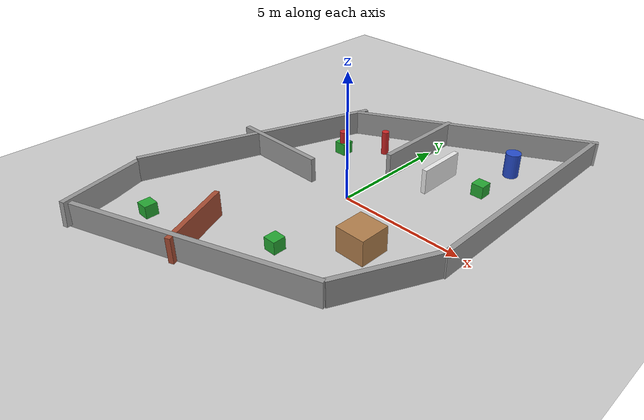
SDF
<sdf version="1.7">
 <world name="four_rooms_world_complex">
  <light name="sun" type="directional">
   <pose>0 0 10 0 -0 0</pose>
   <diffuse>0.8 0.8 0.8 1</diffuse>
   <specular>0.2 0.2 0.2 1</specular>
   <attenuation>
    <range>1000</range>
    <constant>0.9</constant>
    <linear>0.01</linear>
    <quadratic>0.001</quadratic>
   </attenuation>
   <direction>-0.5 0.1 -0.9</direction>
   <spot><inner_angle>0</inner_angle><outer_angle>0</outer_angle><falloff>0</falloff></spot>
  </light>
  <model name="ground_plane">
   <static>1</static>
   <link name="link">
    <collision name="collision">
     <geometry><plane><normal>0 0 1</normal><size>100 100</size></plane></geometry>
     <surface><friction><ode><mu>100</mu><mu2>50</mu2></ode></friction></surface>
    </collision>
    <visual name="visual">
     <cast_shadows>0</cast_shadows>
     <geometry><plane><normal>0 0 1</normal><size>100 100</size></plane></geometry>
     <material>
      <script><uri>file://media/materials/scripts/gazebo.material</uri><name>Gazebo/Grey</name></script>
     </material>
    </visual>
   </link>
  </model>
  <model name="wall_top">
   <static>1</static>
   <pose>0.971432 6.56858 0.5 0 -0 0.480651</pose>
   <link name="link">
    <collision name="c"><geometry><box><size>10 0.2 1</size></box></geometry></collision>
    <visual name="v">
     <geometry><box><size>10 0.2 1</size></box></geometry>
     <material>
      <script><uri>file://media/materials/scripts/gazebo.material</uri><name>Gazebo/Grey</name></script>
     </material>
    </visual>
   </link>
  </model>
  <model name="wall_bottom">
   <static>1</static>
   <pose>-1.11674 -6.33556 0.5 0 -0 0.341465</pose>
   <link name="link">
    <collision name="c"><geometry><box><size>10 0.2 1</size></box></geometry></collision>
    <visual name="v">
     <geometry><box><size>10 0.2 1</size></box></geometry>
     <material>
      <script><uri>file://media/materials/scripts/gazebo.material</uri><name>Gazebo/Grey</name></script>
     </material>
    </visual>
   </link>
  </model>
  <model name="wall_left">
   <static>1</static>
   <pose>-5 0 0.5 0 0 -0.344029</pose>
   <link name="link">
    <collision name="c"><geometry><box><size>0.2 10 1</size></box></geometry></collision>
    <visual name="v">
     <geometry><box><size>0.2 10 1</size></box></geometry>
     <material>
      <script><uri>file://media/materials/scripts/gazebo.material</uri><name>Gazebo/Grey</name></script>
     </material>
    </visual>
   </link>
  </model>
  <model name="wall_right">
   <static>1</static>
   <pose>5.26093 3.82195 0.5 0 -0 0</pose>
   <link name="link">
    <collision name="c"><geometry><box><size>0.2 10 1</size></box></geometry></collision>
    <visual name="v">
     <geometry><box><size>0.2 10 1</size></box></geometry>
     <material>
      <script><uri>file://media/materials/scripts/gazebo.material</uri><name>Gazebo/Grey</name></script>
     </material>
    </visual>
   </link>
  </model>
  <model name="wall_inner_top">
   <static>1</static>
   <pose>0.036173 4.26672 0.5 0 -0 0</pose>
   <link name="link">
    <collision name="c"><geometry><box><size>0.2 4 1</size></box></geometry></collision>
    <visual name="v">
     <geometry><box><size>0.2 4 1</size></box></geometry>
     <material>
      <script><uri>file://media/materials/scripts/gazebo.material</uri><name>Gazebo/Grey</name></script>
     </material>
    </visual>
   </link>
  </model>
  <model name="wall_inner_bottom">
   <static>1</static>
   <pose>-6.17028 -6.3221 0.5 -3.08017 -0.042436 -2.82163</pose>
   <link name="link">
    <collision name="c"><geometry><box><size>0.2 4 1</size></box></geometry></collision>
    <visual name="v">
     <geometry><box><size>0.2 4 1</size></box></geometry>
     <material>
      <script><uri>file://media/materials/scripts/gazebo.material</uri><name>Gazebo/Grey</name></script>
     </material>
    </visual>
   </link>
  </model>
  <model name="wall_inner_left">
   <static>1</static>
   <pose>-3.78806 -0.023325 0.5 0 -0 0</pose>
   <link name="link">
    <collision name="c"><geometry><box><size>4 0.2 1</size></box></geometry></collision>
    <visual name="v">
     <geometry><box><size>4 0.2 1</size></box></geometry>
     <material>
      <script><uri>file://media/materials/scripts/gazebo.material</uri><name>Gazebo/Grey</name></script>
     </material>
    </visual>
   </link>
  </model>
  <model name="wall_inner_right">
   <static>1</static>
   <pose>4.4147 -2.83294 0.5 0 -0 1.12934</pose>
   <link name="link">
    <collision name="c"><geometry><box><size>4 0.2 1</size></box></geometry></collision>
    <visual name="v">
     <geometry><box><size>4 0.2 1</size></box></geometry>
     <material>
      <script><uri>file://media/materials/scripts/gazebo.material</uri><name>Gazebo/Grey</name></script>
     </material>
    </visual>
   </link>
  </model>
  <model name="r1_wall_v">
   <static>1</static>
   <pose>1.77271 3.28107 0.5 0 -0 0</pose>
   <link name="link">
    <collision name="c"><geometry><box><size>0.2 2 1</size></box></geometry></collision>
    <visual name="v">
     <geometry><box><size>0.2 2 1</size></box></geometry>
     <material>
      <script><uri>file://media/materials/scripts/gazebo.material</uri><name>Gazebo/White</name></script>
     </material>
    </visual>
   </link>
  </model>
  <model name="r2_p3">
   <static>1</static>
   <pose>-1.32661 3.66592 0.496269 0 -0 0</pose>
   <link name="link">
    <collision name="c">
     <geometry><cylinder><radius>0.15</radius><length>1</length></cylinder></geometry>
    </collision>
    <visual name="v">
     <geometry><cylinder><radius>0.15</radius><length>1</length></cylinder></geometry>
     <material>
      <script><uri>file://media/materials/scripts/gazebo.material</uri><name>Gazebo/Red</name></script>
     </material>
    </visual>
   </link>
  </model>
  <model name="r2_p4">
   <static>1</static>
   <pose>-2.58674 2.45919 0.5 0 -0 0</pose>
   <link name="link">
    <collision name="c">
     <geometry><cylinder><radius>0.15</radius><length>1</length></cylinder></geometry>
    </collision>
    <visual name="v">
     <geometry><cylinder><radius>0.15</radius><length>1</length></cylinder></geometry>
     <material>
      <script><uri>file://media/materials/scripts/gazebo.material</uri><name>Gazebo/Red</name></script>
     </material>
    </visual>
   </link>
  </model>
  <model name="r3_long_wall">
   <static>1</static>
   <pose>-1.94162 -5.33772 0.5 0 0 -1.16676</pose>
   <link name="link">
    <collision name="c"><geometry><box><size>3 0.2 1</size></box></geometry></collision>
    <visual name="v">
     <geometry><box><size>3 0.2 1</size></box></geometry>
     <material>
      <script><uri>file://media/materials/scripts/gazebo.material</uri><name>Gazebo/Bricks</name></script>
     </material>
    </visual>
   </link>
  </model>
  <model name="r4_box">
   <static>1</static>
   <pose>2.53569 -1.95039 0.5 0 -0 0</pose>
   <link name="link">
    <collision name="c"><geometry><box><size>1.2 1.2 1</size></box></geometry></collision>
    <visual name="v">
     <geometry><box><size>1.2 1.2 1</size></box></geometry>
     <material>
      <script><uri>file://media/materials/scripts/gazebo.material</uri><name>Gazebo/Wood</name></script>
     </material>
    </visual>
   </link>
  </model>
  <model name="r4_cylinder">
   <static>1</static>
   <pose>3.42763 5.76904 0.5 0 -0 0</pose>
   <link name="link">
    <collision name="c">
     <geometry><cylinder><radius>0.3</radius><length>1</length></cylinder></geometry>
    </collision>
    <visual name="v">
     <geometry><cylinder><radius>0.3</radius><length>1</length></cylinder></geometry>
     <material>
      <script><uri>file://media/materials/scripts/gazebo.material</uri><name>Gazebo/Blue</name></script>
     </material>
    </visual>
   </link>
  </model>
  <model name="green_box_1">
   <static>1</static>
   <pose>3.3601 3.72142 0.25 0 -0 0</pose>
   <link name="link">
    <collision name="c"><geometry><box><size>0.5 0.5 0.5</size></box></geometry></collision>
    <visual name="v">
     <geometry><box><size>0.5 0.5 0.5</size></box></geometry>
     <material>
      <script><uri>file://media/materials/scripts/gazebo.material</uri><name>Gazebo/Green</name></script>
     </material>
    </visual>
   </link>
  </model>
  <model name="green_box_2">
   <static>1</static>
   <pose>-2.62198 2.5251 0.25 0 -0 0</pose>
   <link name="link">
    <collision name="c"><geometry><box><size>0.5 0.5 0.5</size></box></geometry></collision>
    <visual name="v">
     <geometry><box><size>0.5 0.5 0.5</size></box></geometry>
     <material>
      <script><uri>file://media/materials/scripts/gazebo.material</uri><name>Gazebo/Green</name></script>
     </material>
    </visual>
   </link>
  </model>
  <model name="green_box_3">
   <static>1</static>
   <pose>-4.3734 -5.71108 0.25 0 -0 0</pose>
   <link name="link">
    <collision name="c"><geometry><box><size>0.5 0.5 0.5</size></box></geometry></collision>
    <visual name="v">
     <geometry><box><size>0.5 0.5 0.5</size></box></geometry>
     <material>
      <script><uri>file://media/materials/scripts/gazebo.material</uri><name>Gazebo/Green</name></script>
     </material>
    </visual>
   </link>
  </model>
  <model name="green_box_4">
   <static>1</static>
   <pose>0.428846 -3.87229 0.25 0 -0 0</pose>
   <link name="link">
    <collision name="c"><geometry><box><size>0.5 0.5 0.5</size></box></geometry></collision>
    <visual name="v">
     <geometry><box><size>0.5 0.5 0.5</size></box></geometry>
     <material>
      <script><uri>file://media/materials/scripts/gazebo.material</uri><name>Gazebo/Green</name></script>
     </material>
    </visual>
   </link>
  </model>
  <gravity>0 0 -9.8</gravity>
  <magnetic_field>6e-06 2.3e-05 -4.2e-05</magnetic_field>
  <atmosphere type="adiabatic"/>
  <physics type="ode">
   <max_step_size>0.001</max_step_size>
   <real_time_factor>1</real_time_factor>
   <real_time_update_rate>1000</real_time_update_rate>
  </physics>
  <scene><ambient>0.4 0.4 0.4 1</ambient><background>0.7 0.7 0.7 1</background><shadows>1</shadows></scene>
  <spherical_coordinates>
   <surface_model>EARTH_WGS84</surface_model>
   <latitude_deg>0</latitude_deg>
   <longitude_deg>0</longitude_deg>
   <elevation>0</elevation>
   <heading_deg>0</heading_deg>
  </spherical_coordinates>
 </world>
</sdf>
